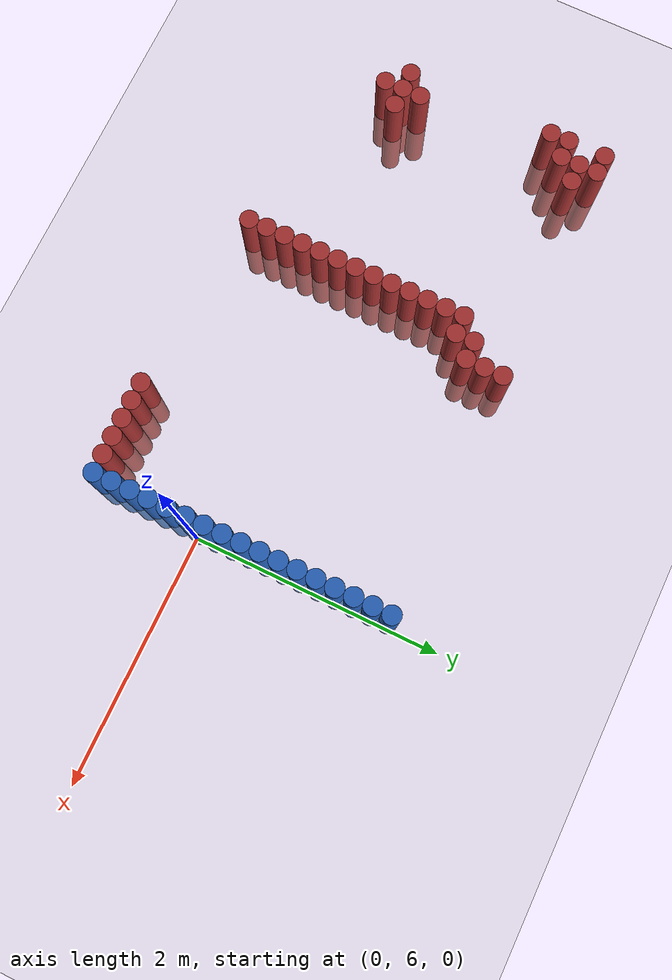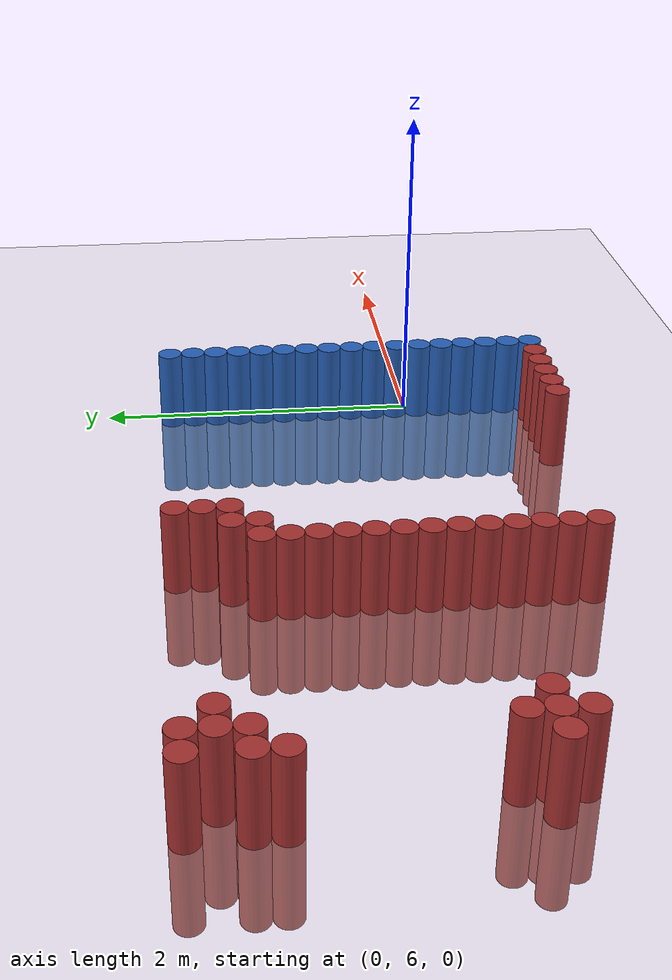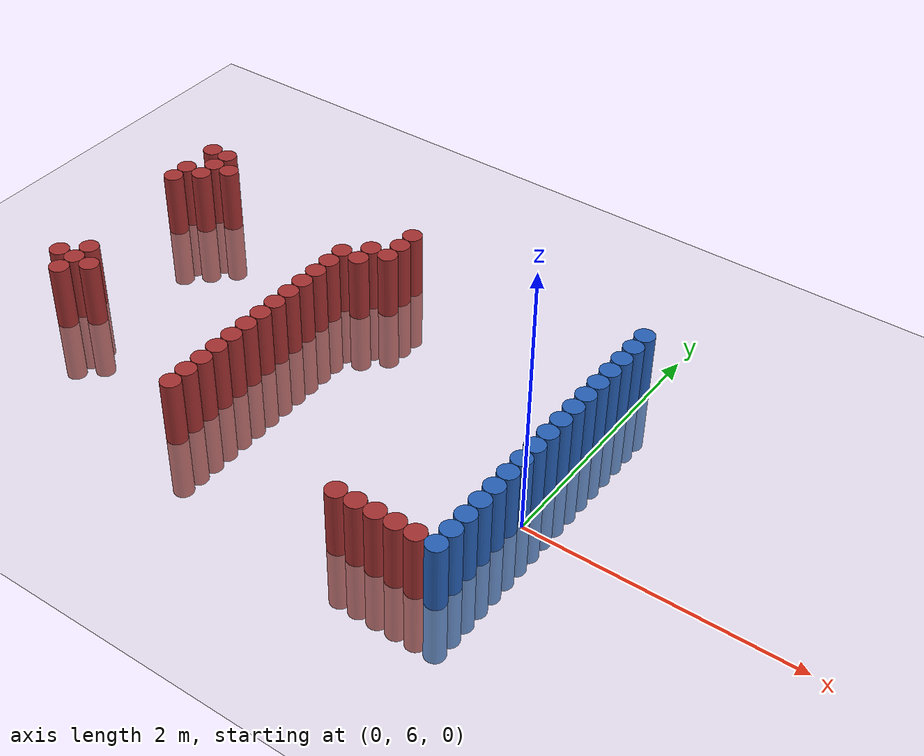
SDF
<sdf version="1.6">
 <world name="default">
  <model name="ground_plane">
   <static>1</static>
   <link name="link">
    <collision name="collision">
     <geometry><plane><normal>0 0 1</normal><size>100 100</size></plane></geometry>
     <surface><friction><ode><mu>100</mu><mu2>50</mu2></ode></friction></surface>
    </collision>
    <visual name="visual">
     <cast_shadows>0</cast_shadows>
     <geometry><plane><normal>0 0 1</normal><size>100 100</size></plane></geometry>
     <material>
      <script><uri>file://media/materials/scripts/gazebo.material</uri><name>Gazebo/Grey</name></script>
     </material>
    </visual>
   </link>
  </model>
  <model name="unit_cylinder_251">
   <static>1</static>
   <pose>-3.975000 5.925000 0.000000 0.000000 0.000000 0.000000</pose>
   <link name="link">
    <inertial>
     <mass>1</mass>
     <inertia><ixx>0.145833</ixx><ixy>0</ixy><ixz>0</ixz><iyy>0.145833</iyy><iyz>0</iyz><izz>0.125</izz></inertia>
    </inertial>
    <collision name="collision">
     <geometry><cylinder><radius>0.075000</radius><length>1</length></cylinder></geometry>
    </collision>
    <visual name="visual">
     <geometry><cylinder><radius>0.075000</radius><length>1</length></cylinder></geometry>
     <material>
      <ambient>0.648000 0.192000 0.192000 1</ambient>
      <diffuse>0.648000 0.192000 0.192000 1</diffuse>
     </material>
     <material>
      <script><name>Gazebo/Grey</name><uri>file://media/materials/scripts/gazebo.material</uri></script>
     </material>
    </visual>
   </link>
  </model>
  <model name="unit_cylinder_252">
   <static>1</static>
   <pose>-3.975000 7.125000 0.000000 0.000000 0.000000 0.000000</pose>
   <link name="link">
    <inertial>
     <mass>1</mass>
     <inertia><ixx>0.145833</ixx><ixy>0</ixy><ixz>0</ixz><iyy>0.145833</iyy><iyz>0</iyz><izz>0.125</izz></inertia>
    </inertial>
    <collision name="collision">
     <geometry><cylinder><radius>0.075000</radius><length>1</length></cylinder></geometry>
    </collision>
    <visual name="visual">
     <geometry><cylinder><radius>0.075000</radius><length>1</length></cylinder></geometry>
     <material>
      <ambient>0.648000 0.192000 0.192000 1</ambient>
      <diffuse>0.648000 0.192000 0.192000 1</diffuse>
     </material>
     <material>
      <script><name>Gazebo/Grey</name><uri>file://media/materials/scripts/gazebo.material</uri></script>
     </material>
    </visual>
   </link>
  </model>
  <model name="unit_cylinder_253">
   <static>1</static>
   <pose>-3.975000 7.275000 0.000000 0.000000 0.000000 0.000000</pose>
   <link name="link">
    <inertial>
     <mass>1</mass>
     <inertia><ixx>0.145833</ixx><ixy>0</ixy><ixz>0</ixz><iyy>0.145833</iyy><iyz>0</iyz><izz>0.125</izz></inertia>
    </inertial>
    <collision name="collision">
     <geometry><cylinder><radius>0.075000</radius><length>1</length></cylinder></geometry>
    </collision>
    <visual name="visual">
     <geometry><cylinder><radius>0.075000</radius><length>1</length></cylinder></geometry>
     <material>
      <ambient>0.648000 0.192000 0.192000 1</ambient>
      <diffuse>0.648000 0.192000 0.192000 1</diffuse>
     </material>
     <material>
      <script><name>Gazebo/Grey</name><uri>file://media/materials/scripts/gazebo.material</uri></script>
     </material>
    </visual>
   </link>
  </model>
  <model name="unit_cylinder_254">
   <static>1</static>
   <pose>-3.975000 7.575000 0.000000 0.000000 0.000000 0.000000</pose>
   <link name="link">
    <inertial>
     <mass>1</mass>
     <inertia><ixx>0.145833</ixx><ixy>0</ixy><ixz>0</ixz><iyy>0.145833</iyy><iyz>0</iyz><izz>0.125</izz></inertia>
    </inertial>
    <collision name="collision">
     <geometry><cylinder><radius>0.075000</radius><length>1</length></cylinder></geometry>
    </collision>
    <visual name="visual">
     <geometry><cylinder><radius>0.075000</radius><length>1</length></cylinder></geometry>
     <material>
      <ambient>0.648000 0.192000 0.192000 1</ambient>
      <diffuse>0.648000 0.192000 0.192000 1</diffuse>
     </material>
     <material>
      <script><name>Gazebo/Grey</name><uri>file://media/materials/scripts/gazebo.material</uri></script>
     </material>
    </visual>
   </link>
  </model>
  <model name="unit_cylinder_258">
   <static>1</static>
   <pose>-3.825000 5.775000 0.000000 0.000000 0.000000 0.000000</pose>
   <link name="link">
    <inertial>
     <mass>1</mass>
     <inertia><ixx>0.145833</ixx><ixy>0</ixy><ixz>0</ixz><iyy>0.145833</iyy><iyz>0</iyz><izz>0.125</izz></inertia>
    </inertial>
    <collision name="collision">
     <geometry><cylinder><radius>0.075000</radius><length>1</length></cylinder></geometry>
    </collision>
    <visual name="visual">
     <geometry><cylinder><radius>0.075000</radius><length>1</length></cylinder></geometry>
     <material>
      <ambient>0.648000 0.192000 0.192000 1</ambient>
      <diffuse>0.648000 0.192000 0.192000 1</diffuse>
     </material>
     <material>
      <script><name>Gazebo/Grey</name><uri>file://media/materials/scripts/gazebo.material</uri></script>
     </material>
    </visual>
   </link>
  </model>
  <model name="unit_cylinder_259">
   <static>1</static>
   <pose>-3.825000 5.925000 0.000000 0.000000 0.000000 0.000000</pose>
   <link name="link">
    <inertial>
     <mass>1</mass>
     <inertia><ixx>0.145833</ixx><ixy>0</ixy><ixz>0</ixz><iyy>0.145833</iyy><iyz>0</iyz><izz>0.125</izz></inertia>
    </inertial>
    <collision name="collision">
     <geometry><cylinder><radius>0.075000</radius><length>1</length></cylinder></geometry>
    </collision>
    <visual name="visual">
     <geometry><cylinder><radius>0.075000</radius><length>1</length></cylinder></geometry>
     <material>
      <ambient>0.648000 0.192000 0.192000 1</ambient>
      <diffuse>0.648000 0.192000 0.192000 1</diffuse>
     </material>
     <material>
      <script><name>Gazebo/Grey</name><uri>file://media/materials/scripts/gazebo.material</uri></script>
     </material>
    </visual>
   </link>
  </model>
  <model name="unit_cylinder_260">
   <static>1</static>
   <pose>-3.825000 6.075000 0.000000 0.000000 0.000000 0.000000</pose>
   <link name="link">
    <inertial>
     <mass>1</mass>
     <inertia><ixx>0.145833</ixx><ixy>0</ixy><ixz>0</ixz><iyy>0.145833</iyy><iyz>0</iyz><izz>0.125</izz></inertia>
    </inertial>
    <collision name="collision">
     <geometry><cylinder><radius>0.075000</radius><length>1</length></cylinder></geometry>
    </collision>
    <visual name="visual">
     <geometry><cylinder><radius>0.075000</radius><length>1</length></cylinder></geometry>
     <material>
      <ambient>0.648000 0.192000 0.192000 1</ambient>
      <diffuse>0.648000 0.192000 0.192000 1</diffuse>
     </material>
     <material>
      <script><name>Gazebo/Grey</name><uri>file://media/materials/scripts/gazebo.material</uri></script>
     </material>
    </visual>
   </link>
  </model>
  <model name="unit_cylinder_261">
   <static>1</static>
   <pose>-3.825000 7.275000 0.000000 0.000000 0.000000 0.000000</pose>
   <link name="link">
    <inertial>
     <mass>1</mass>
     <inertia><ixx>0.145833</ixx><ixy>0</ixy><ixz>0</ixz><iyy>0.145833</iyy><iyz>0</iyz><izz>0.125</izz></inertia>
    </inertial>
    <collision name="collision">
     <geometry><cylinder><radius>0.075000</radius><length>1</length></cylinder></geometry>
    </collision>
    <visual name="visual">
     <geometry><cylinder><radius>0.075000</radius><length>1</length></cylinder></geometry>
     <material>
      <ambient>0.648000 0.192000 0.192000 1</ambient>
      <diffuse>0.648000 0.192000 0.192000 1</diffuse>
     </material>
     <material>
      <script><name>Gazebo/Grey</name><uri>file://media/materials/scripts/gazebo.material</uri></script>
     </material>
    </visual>
   </link>
  </model>
  <model name="unit_cylinder_262">
   <static>1</static>
   <pose>-3.825000 7.425000 0.000000 0.000000 0.000000 0.000000</pose>
   <link name="link">
    <inertial>
     <mass>1</mass>
     <inertia><ixx>0.145833</ixx><ixy>0</ixy><ixz>0</ixz><iyy>0.145833</iyy><iyz>0</iyz><izz>0.125</izz></inertia>
    </inertial>
    <collision name="collision">
     <geometry><cylinder><radius>0.075000</radius><length>1</length></cylinder></geometry>
    </collision>
    <visual name="visual">
     <geometry><cylinder><radius>0.075000</radius><length>1</length></cylinder></geometry>
     <material>
      <ambient>0.648000 0.192000 0.192000 1</ambient>
      <diffuse>0.648000 0.192000 0.192000 1</diffuse>
     </material>
     <material>
      <script><name>Gazebo/Grey</name><uri>file://media/materials/scripts/gazebo.material</uri></script>
     </material>
    </visual>
   </link>
  </model>
  <model name="unit_cylinder_263">
   <static>1</static>
   <pose>-3.825000 7.575000 0.000000 0.000000 0.000000 0.000000</pose>
   <link name="link">
    <inertial>
     <mass>1</mass>
     <inertia><ixx>0.145833</ixx><ixy>0</ixy><ixz>0</ixz><iyy>0.145833</iyy><iyz>0</iyz><izz>0.125</izz></inertia>
    </inertial>
    <collision name="collision">
     <geometry><cylinder><radius>0.075000</radius><length>1</length></cylinder></geometry>
    </collision>
    <visual name="visual">
     <geometry><cylinder><radius>0.075000</radius><length>1</length></cylinder></geometry>
     <material>
      <ambient>0.648000 0.192000 0.192000 1</ambient>
      <diffuse>0.648000 0.192000 0.192000 1</diffuse>
     </material>
     <material>
      <script><name>Gazebo/Grey</name><uri>file://media/materials/scripts/gazebo.material</uri></script>
     </material>
    </visual>
   </link>
  </model>
  <model name="unit_cylinder_268">
   <static>1</static>
   <pose>-3.675000 5.925000 0.000000 0.000000 0.000000 0.000000</pose>
   <link name="link">
    <inertial>
     <mass>1</mass>
     <inertia><ixx>0.145833</ixx><ixy>0</ixy><ixz>0</ixz><iyy>0.145833</iyy><iyz>0</iyz><izz>0.125</izz></inertia>
    </inertial>
    <collision name="collision">
     <geometry><cylinder><radius>0.075000</radius><length>1</length></cylinder></geometry>
    </collision>
    <visual name="visual">
     <geometry><cylinder><radius>0.075000</radius><length>1</length></cylinder></geometry>
     <material>
      <ambient>0.648000 0.192000 0.192000 1</ambient>
      <diffuse>0.648000 0.192000 0.192000 1</diffuse>
     </material>
     <material>
      <script><name>Gazebo/Grey</name><uri>file://media/materials/scripts/gazebo.material</uri></script>
     </material>
    </visual>
   </link>
  </model>
  <model name="unit_cylinder_269">
   <static>1</static>
   <pose>-3.675000 7.425000 0.000000 0.000000 0.000000 0.000000</pose>
   <link name="link">
    <inertial>
     <mass>1</mass>
     <inertia><ixx>0.145833</ixx><ixy>0</ixy><ixz>0</ixz><iyy>0.145833</iyy><iyz>0</iyz><izz>0.125</izz></inertia>
    </inertial>
    <collision name="collision">
     <geometry><cylinder><radius>0.075000</radius><length>1</length></cylinder></geometry>
    </collision>
    <visual name="visual">
     <geometry><cylinder><radius>0.075000</radius><length>1</length></cylinder></geometry>
     <material>
      <ambient>0.648000 0.192000 0.192000 1</ambient>
      <diffuse>0.648000 0.192000 0.192000 1</diffuse>
     </material>
     <material>
      <script><name>Gazebo/Grey</name><uri>file://media/materials/scripts/gazebo.material</uri></script>
     </material>
    </visual>
   </link>
  </model>
  <model name="unit_cylinder_279">
   <static>1</static>
   <pose>-2.325000 5.325000 0.000000 0.000000 0.000000 0.000000</pose>
   <link name="link">
    <inertial>
     <mass>1</mass>
     <inertia><ixx>0.145833</ixx><ixy>0</ixy><ixz>0</ixz><iyy>0.145833</iyy><iyz>0</iyz><izz>0.125</izz></inertia>
    </inertial>
    <collision name="collision">
     <geometry><cylinder><radius>0.075000</radius><length>1</length></cylinder></geometry>
    </collision>
    <visual name="visual">
     <geometry><cylinder><radius>0.075000</radius><length>1</length></cylinder></geometry>
     <material>
      <ambient>0.648000 0.192000 0.192000 1</ambient>
      <diffuse>0.648000 0.192000 0.192000 1</diffuse>
     </material>
     <material>
      <script><name>Gazebo/Grey</name><uri>file://media/materials/scripts/gazebo.material</uri></script>
     </material>
    </visual>
   </link>
  </model>
  <model name="unit_cylinder_280">
   <static>1</static>
   <pose>-2.325000 5.475000 0.000000 0.000000 0.000000 0.000000</pose>
   <link name="link">
    <inertial>
     <mass>1</mass>
     <inertia><ixx>0.145833</ixx><ixy>0</ixy><ixz>0</ixz><iyy>0.145833</iyy><iyz>0</iyz><izz>0.125</izz></inertia>
    </inertial>
    <collision name="collision">
     <geometry><cylinder><radius>0.075000</radius><length>1</length></cylinder></geometry>
    </collision>
    <visual name="visual">
     <geometry><cylinder><radius>0.075000</radius><length>1</length></cylinder></geometry>
     <material>
      <ambient>0.648000 0.192000 0.192000 1</ambient>
      <diffuse>0.648000 0.192000 0.192000 1</diffuse>
     </material>
     <material>
      <script><name>Gazebo/Grey</name><uri>file://media/materials/scripts/gazebo.material</uri></script>
     </material>
    </visual>
   </link>
  </model>
  <model name="unit_cylinder_281">
   <static>1</static>
   <pose>-2.325000 5.625000 0.000000 0.000000 0.000000 0.000000</pose>
   <link name="link">
    <inertial>
     <mass>1</mass>
     <inertia><ixx>0.145833</ixx><ixy>0</ixy><ixz>0</ixz><iyy>0.145833</iyy><iyz>0</iyz><izz>0.125</izz></inertia>
    </inertial>
    <collision name="collision">
     <geometry><cylinder><radius>0.075000</radius><length>1</length></cylinder></geometry>
    </collision>
    <visual name="visual">
     <geometry><cylinder><radius>0.075000</radius><length>1</length></cylinder></geometry>
     <material>
      <ambient>0.648000 0.192000 0.192000 1</ambient>
      <diffuse>0.648000 0.192000 0.192000 1</diffuse>
     </material>
     <material>
      <script><name>Gazebo/Grey</name><uri>file://media/materials/scripts/gazebo.material</uri></script>
     </material>
    </visual>
   </link>
  </model>
  <model name="unit_cylinder_282">
   <static>1</static>
   <pose>-2.325000 5.775000 0.000000 0.000000 0.000000 0.000000</pose>
   <link name="link">
    <inertial>
     <mass>1</mass>
     <inertia><ixx>0.145833</ixx><ixy>0</ixy><ixz>0</ixz><iyy>0.145833</iyy><iyz>0</iyz><izz>0.125</izz></inertia>
    </inertial>
    <collision name="collision">
     <geometry><cylinder><radius>0.075000</radius><length>1</length></cylinder></geometry>
    </collision>
    <visual name="visual">
     <geometry><cylinder><radius>0.075000</radius><length>1</length></cylinder></geometry>
     <material>
      <ambient>0.648000 0.192000 0.192000 1</ambient>
      <diffuse>0.648000 0.192000 0.192000 1</diffuse>
     </material>
     <material>
      <script><name>Gazebo/Grey</name><uri>file://media/materials/scripts/gazebo.material</uri></script>
     </material>
    </visual>
   </link>
  </model>
  <model name="unit_cylinder_283">
   <static>1</static>
   <pose>-2.325000 5.925000 0.000000 0.000000 0.000000 0.000000</pose>
   <link name="link">
    <inertial>
     <mass>1</mass>
     <inertia><ixx>0.145833</ixx><ixy>0</ixy><ixz>0</ixz><iyy>0.145833</iyy><iyz>0</iyz><izz>0.125</izz></inertia>
    </inertial>
    <collision name="collision">
     <geometry><cylinder><radius>0.075000</radius><length>1</length></cylinder></geometry>
    </collision>
    <visual name="visual">
     <geometry><cylinder><radius>0.075000</radius><length>1</length></cylinder></geometry>
     <material>
      <ambient>0.648000 0.192000 0.192000 1</ambient>
      <diffuse>0.648000 0.192000 0.192000 1</diffuse>
     </material>
     <material>
      <script><name>Gazebo/Grey</name><uri>file://media/materials/scripts/gazebo.material</uri></script>
     </material>
    </visual>
   </link>
  </model>
  <model name="unit_cylinder_284">
   <static>1</static>
   <pose>-2.325000 6.075000 0.000000 0.000000 0.000000 0.000000</pose>
   <link name="link">
    <inertial>
     <mass>1</mass>
     <inertia><ixx>0.145833</ixx><ixy>0</ixy><ixz>0</ixz><iyy>0.145833</iyy><iyz>0</iyz><izz>0.125</izz></inertia>
    </inertial>
    <collision name="collision">
     <geometry><cylinder><radius>0.075000</radius><length>1</length></cylinder></geometry>
    </collision>
    <visual name="visual">
     <geometry><cylinder><radius>0.075000</radius><length>1</length></cylinder></geometry>
     <material>
      <ambient>0.648000 0.192000 0.192000 1</ambient>
      <diffuse>0.648000 0.192000 0.192000 1</diffuse>
     </material>
     <material>
      <script><name>Gazebo/Grey</name><uri>file://media/materials/scripts/gazebo.material</uri></script>
     </material>
    </visual>
   </link>
  </model>
  <model name="unit_cylinder_285">
   <static>1</static>
   <pose>-2.325000 6.225000 0.000000 0.000000 0.000000 0.000000</pose>
   <link name="link">
    <inertial>
     <mass>1</mass>
     <inertia><ixx>0.145833</ixx><ixy>0</ixy><ixz>0</ixz><iyy>0.145833</iyy><iyz>0</iyz><izz>0.125</izz></inertia>
    </inertial>
    <collision name="collision">
     <geometry><cylinder><radius>0.075000</radius><length>1</length></cylinder></geometry>
    </collision>
    <visual name="visual">
     <geometry><cylinder><radius>0.075000</radius><length>1</length></cylinder></geometry>
     <material>
      <ambient>0.648000 0.192000 0.192000 1</ambient>
      <diffuse>0.648000 0.192000 0.192000 1</diffuse>
     </material>
     <material>
      <script><name>Gazebo/Grey</name><uri>file://media/materials/scripts/gazebo.material</uri></script>
     </material>
    </visual>
   </link>
  </model>
  <model name="unit_cylinder_286">
   <static>1</static>
   <pose>-2.325000 6.375000 0.000000 0.000000 0.000000 0.000000</pose>
   <link name="link">
    <inertial>
     <mass>1</mass>
     <inertia><ixx>0.145833</ixx><ixy>0</ixy><ixz>0</ixz><iyy>0.145833</iyy><iyz>0</iyz><izz>0.125</izz></inertia>
    </inertial>
    <collision name="collision">
     <geometry><cylinder><radius>0.075000</radius><length>1</length></cylinder></geometry>
    </collision>
    <visual name="visual">
     <geometry><cylinder><radius>0.075000</radius><length>1</length></cylinder></geometry>
     <material>
      <ambient>0.648000 0.192000 0.192000 1</ambient>
      <diffuse>0.648000 0.192000 0.192000 1</diffuse>
     </material>
     <material>
      <script><name>Gazebo/Grey</name><uri>file://media/materials/scripts/gazebo.material</uri></script>
     </material>
    </visual>
   </link>
  </model>
  <model name="unit_cylinder_287">
   <static>1</static>
   <pose>-2.325000 6.525000 0.000000 0.000000 0.000000 0.000000</pose>
   <link name="link">
    <inertial>
     <mass>1</mass>
     <inertia><ixx>0.145833</ixx><ixy>0</ixy><ixz>0</ixz><iyy>0.145833</iyy><iyz>0</iyz><izz>0.125</izz></inertia>
    </inertial>
    <collision name="collision">
     <geometry><cylinder><radius>0.075000</radius><length>1</length></cylinder></geometry>
    </collision>
    <visual name="visual">
     <geometry><cylinder><radius>0.075000</radius><length>1</length></cylinder></geometry>
     <material>
      <ambient>0.648000 0.192000 0.192000 1</ambient>
      <diffuse>0.648000 0.192000 0.192000 1</diffuse>
     </material>
     <material>
      <script><name>Gazebo/Grey</name><uri>file://media/materials/scripts/gazebo.material</uri></script>
     </material>
    </visual>
   </link>
  </model>
  <model name="unit_cylinder_288">
   <static>1</static>
   <pose>-2.325000 6.675000 0.000000 0.000000 0.000000 0.000000</pose>
   <link name="link">
    <inertial>
     <mass>1</mass>
     <inertia><ixx>0.145833</ixx><ixy>0</ixy><ixz>0</ixz><iyy>0.145833</iyy><iyz>0</iyz><izz>0.125</izz></inertia>
    </inertial>
    <collision name="collision">
     <geometry><cylinder><radius>0.075000</radius><length>1</length></cylinder></geometry>
    </collision>
    <visual name="visual">
     <geometry><cylinder><radius>0.075000</radius><length>1</length></cylinder></geometry>
     <material>
      <ambient>0.648000 0.192000 0.192000 1</ambient>
      <diffuse>0.648000 0.192000 0.192000 1</diffuse>
     </material>
     <material>
      <script><name>Gazebo/Grey</name><uri>file://media/materials/scripts/gazebo.material</uri></script>
     </material>
    </visual>
   </link>
  </model>
  <model name="unit_cylinder_289">
   <static>1</static>
   <pose>-2.325000 6.825000 0.000000 0.000000 0.000000 0.000000</pose>
   <link name="link">
    <inertial>
     <mass>1</mass>
     <inertia><ixx>0.145833</ixx><ixy>0</ixy><ixz>0</ixz><iyy>0.145833</iyy><iyz>0</iyz><izz>0.125</izz></inertia>
    </inertial>
    <collision name="collision">
     <geometry><cylinder><radius>0.075000</radius><length>1</length></cylinder></geometry>
    </collision>
    <visual name="visual">
     <geometry><cylinder><radius>0.075000</radius><length>1</length></cylinder></geometry>
     <material>
      <ambient>0.648000 0.192000 0.192000 1</ambient>
      <diffuse>0.648000 0.192000 0.192000 1</diffuse>
     </material>
     <material>
      <script><name>Gazebo/Grey</name><uri>file://media/materials/scripts/gazebo.material</uri></script>
     </material>
    </visual>
   </link>
  </model>
  <model name="unit_cylinder_290">
   <static>1</static>
   <pose>-2.325000 6.975000 0.000000 0.000000 0.000000 0.000000</pose>
   <link name="link">
    <inertial>
     <mass>1</mass>
     <inertia><ixx>0.145833</ixx><ixy>0</ixy><ixz>0</ixz><iyy>0.145833</iyy><iyz>0</iyz><izz>0.125</izz></inertia>
    </inertial>
    <collision name="collision">
     <geometry><cylinder><radius>0.075000</radius><length>1</length></cylinder></geometry>
    </collision>
    <visual name="visual">
     <geometry><cylinder><radius>0.075000</radius><length>1</length></cylinder></geometry>
     <material>
      <ambient>0.648000 0.192000 0.192000 1</ambient>
      <diffuse>0.648000 0.192000 0.192000 1</diffuse>
     </material>
     <material>
      <script><name>Gazebo/Grey</name><uri>file://media/materials/scripts/gazebo.material</uri></script>
     </material>
    </visual>
   </link>
  </model>
  <model name="unit_cylinder_291">
   <static>1</static>
   <pose>-2.325000 7.125000 0.000000 0.000000 0.000000 0.000000</pose>
   <link name="link">
    <inertial>
     <mass>1</mass>
     <inertia><ixx>0.145833</ixx><ixy>0</ixy><ixz>0</ixz><iyy>0.145833</iyy><iyz>0</iyz><izz>0.125</izz></inertia>
    </inertial>
    <collision name="collision">
     <geometry><cylinder><radius>0.075000</radius><length>1</length></cylinder></geometry>
    </collision>
    <visual name="visual">
     <geometry><cylinder><radius>0.075000</radius><length>1</length></cylinder></geometry>
     <material>
      <ambient>0.648000 0.192000 0.192000 1</ambient>
      <diffuse>0.648000 0.192000 0.192000 1</diffuse>
     </material>
     <material>
      <script><name>Gazebo/Grey</name><uri>file://media/materials/scripts/gazebo.material</uri></script>
     </material>
    </visual>
   </link>
  </model>
  <model name="unit_cylinder_293">
   <static>1</static>
   <pose>-2.175000 7.125000 0.000000 0.000000 0.000000 0.000000</pose>
   <link name="link">
    <inertial>
     <mass>1</mass>
     <inertia><ixx>0.145833</ixx><ixy>0</ixy><ixz>0</ixz><iyy>0.145833</iyy><iyz>0</iyz><izz>0.125</izz></inertia>
    </inertial>
    <collision name="collision">
     <geometry><cylinder><radius>0.075000</radius><length>1</length></cylinder></geometry>
    </collision>
    <visual name="visual">
     <geometry><cylinder><radius>0.075000</radius><length>1</length></cylinder></geometry>
     <material>
      <ambient>0.648000 0.192000 0.192000 1</ambient>
      <diffuse>0.648000 0.192000 0.192000 1</diffuse>
     </material>
     <material>
      <script><name>Gazebo/Grey</name><uri>file://media/materials/scripts/gazebo.material</uri></script>
     </material>
    </visual>
   </link>
  </model>
  <model name="unit_cylinder_294">
   <static>1</static>
   <pose>-2.175000 7.275000 0.000000 0.000000 0.000000 0.000000</pose>
   <link name="link">
    <inertial>
     <mass>1</mass>
     <inertia><ixx>0.145833</ixx><ixy>0</ixy><ixz>0</ixz><iyy>0.145833</iyy><iyz>0</iyz><izz>0.125</izz></inertia>
    </inertial>
    <collision name="collision">
     <geometry><cylinder><radius>0.075000</radius><length>1</length></cylinder></geometry>
    </collision>
    <visual name="visual">
     <geometry><cylinder><radius>0.075000</radius><length>1</length></cylinder></geometry>
     <material>
      <ambient>0.648000 0.192000 0.192000 1</ambient>
      <diffuse>0.648000 0.192000 0.192000 1</diffuse>
     </material>
     <material>
      <script><name>Gazebo/Grey</name><uri>file://media/materials/scripts/gazebo.material</uri></script>
     </material>
    </visual>
   </link>
  </model>
  <model name="unit_cylinder_296">
   <static>1</static>
   <pose>-2.025000 7.275000 0.000000 0.000000 0.000000 0.000000</pose>
   <link name="link">
    <inertial>
     <mass>1</mass>
     <inertia><ixx>0.145833</ixx><ixy>0</ixy><ixz>0</ixz><iyy>0.145833</iyy><iyz>0</iyz><izz>0.125</izz></inertia>
    </inertial>
    <collision name="collision">
     <geometry><cylinder><radius>0.075000</radius><length>1</length></cylinder></geometry>
    </collision>
    <visual name="visual">
     <geometry><cylinder><radius>0.075000</radius><length>1</length></cylinder></geometry>
     <material>
      <ambient>0.648000 0.192000 0.192000 1</ambient>
      <diffuse>0.648000 0.192000 0.192000 1</diffuse>
     </material>
     <material>
      <script><name>Gazebo/Grey</name><uri>file://media/materials/scripts/gazebo.material</uri></script>
     </material>
    </visual>
   </link>
  </model>
  <model name="unit_cylinder_297">
   <static>1</static>
   <pose>-2.025000 7.425000 0.000000 0.000000 0.000000 0.000000</pose>
   <link name="link">
    <inertial>
     <mass>1</mass>
     <inertia><ixx>0.145833</ixx><ixy>0</ixy><ixz>0</ixz><iyy>0.145833</iyy><iyz>0</iyz><izz>0.125</izz></inertia>
    </inertial>
    <collision name="collision">
     <geometry><cylinder><radius>0.075000</radius><length>1</length></cylinder></geometry>
    </collision>
    <visual name="visual">
     <geometry><cylinder><radius>0.075000</radius><length>1</length></cylinder></geometry>
     <material>
      <ambient>0.648000 0.192000 0.192000 1</ambient>
      <diffuse>0.648000 0.192000 0.192000 1</diffuse>
     </material>
     <material>
      <script><name>Gazebo/Grey</name><uri>file://media/materials/scripts/gazebo.material</uri></script>
     </material>
    </visual>
   </link>
  </model>
  <model name="unit_cylinder_298">
   <static>1</static>
   <pose>-2.025000 7.575000 0.000000 0.000000 0.000000 0.000000</pose>
   <link name="link">
    <inertial>
     <mass>1</mass>
     <inertia><ixx>0.145833</ixx><ixy>0</ixy><ixz>0</ixz><iyy>0.145833</iyy><iyz>0</iyz><izz>0.125</izz></inertia>
    </inertial>
    <collision name="collision">
     <geometry><cylinder><radius>0.075000</radius><length>1</length></cylinder></geometry>
    </collision>
    <visual name="visual">
     <geometry><cylinder><radius>0.075000</radius><length>1</length></cylinder></geometry>
     <material>
      <ambient>0.648000 0.192000 0.192000 1</ambient>
      <diffuse>0.648000 0.192000 0.192000 1</diffuse>
     </material>
     <material>
      <script><name>Gazebo/Grey</name><uri>file://media/materials/scripts/gazebo.material</uri></script>
     </material>
    </visual>
   </link>
  </model>
  <model name="unit_cylinder_326">
   <static>1</static>
   <pose>-0.825000 5.175000 0.000000 0.000000 0.000000 0.000000</pose>
   <link name="link">
    <inertial>
     <mass>1</mass>
     <inertia><ixx>0.145833</ixx><ixy>0</ixy><ixz>0</ixz><iyy>0.145833</iyy><iyz>0</iyz><izz>0.125</izz></inertia>
    </inertial>
    <collision name="collision">
     <geometry><cylinder><radius>0.075000</radius><length>1</length></cylinder></geometry>
    </collision>
    <visual name="visual">
     <geometry><cylinder><radius>0.075000</radius><length>1</length></cylinder></geometry>
     <material>
      <ambient>0.648000 0.192000 0.192000 1</ambient>
      <diffuse>0.648000 0.192000 0.192000 1</diffuse>
     </material>
     <material>
      <script><name>Gazebo/Grey</name><uri>file://media/materials/scripts/gazebo.material</uri></script>
     </material>
    </visual>
   </link>
  </model>
  <model name="unit_cylinder_328">
   <static>1</static>
   <pose>-0.675000 5.175000 0.000000 0.000000 0.000000 0.000000</pose>
   <link name="link">
    <inertial>
     <mass>1</mass>
     <inertia><ixx>0.145833</ixx><ixy>0</ixy><ixz>0</ixz><iyy>0.145833</iyy><iyz>0</iyz><izz>0.125</izz></inertia>
    </inertial>
    <collision name="collision">
     <geometry><cylinder><radius>0.075000</radius><length>1</length></cylinder></geometry>
    </collision>
    <visual name="visual">
     <geometry><cylinder><radius>0.075000</radius><length>1</length></cylinder></geometry>
     <material>
      <ambient>0.648000 0.192000 0.192000 1</ambient>
      <diffuse>0.648000 0.192000 0.192000 1</diffuse>
     </material>
     <material>
      <script><name>Gazebo/Grey</name><uri>file://media/materials/scripts/gazebo.material</uri></script>
     </material>
    </visual>
   </link>
  </model>
  <model name="unit_cylinder_330">
   <static>1</static>
   <pose>-0.525000 5.175000 0.000000 0.000000 0.000000 0.000000</pose>
   <link name="link">
    <inertial>
     <mass>1</mass>
     <inertia><ixx>0.145833</ixx><ixy>0</ixy><ixz>0</ixz><iyy>0.145833</iyy><iyz>0</iyz><izz>0.125</izz></inertia>
    </inertial>
    <collision name="collision">
     <geometry><cylinder><radius>0.075000</radius><length>1</length></cylinder></geometry>
    </collision>
    <visual name="visual">
     <geometry><cylinder><radius>0.075000</radius><length>1</length></cylinder></geometry>
     <material>
      <ambient>0.648000 0.192000 0.192000 1</ambient>
      <diffuse>0.648000 0.192000 0.192000 1</diffuse>
     </material>
     <material>
      <script><name>Gazebo/Grey</name><uri>file://media/materials/scripts/gazebo.material</uri></script>
     </material>
    </visual>
   </link>
  </model>
  <model name="unit_cylinder_332">
   <static>1</static>
   <pose>-0.375000 5.175000 0.000000 0.000000 0.000000 0.000000</pose>
   <link name="link">
    <inertial>
     <mass>1</mass>
     <inertia><ixx>0.145833</ixx><ixy>0</ixy><ixz>0</ixz><iyy>0.145833</iyy><iyz>0</iyz><izz>0.125</izz></inertia>
    </inertial>
    <collision name="collision">
     <geometry><cylinder><radius>0.075000</radius><length>1</length></cylinder></geometry>
    </collision>
    <visual name="visual">
     <geometry><cylinder><radius>0.075000</radius><length>1</length></cylinder></geometry>
     <material>
      <ambient>0.648000 0.192000 0.192000 1</ambient>
      <diffuse>0.648000 0.192000 0.192000 1</diffuse>
     </material>
     <material>
      <script><name>Gazebo/Grey</name><uri>file://media/materials/scripts/gazebo.material</uri></script>
     </material>
    </visual>
   </link>
  </model>
  <model name="unit_cylinder_334">
   <static>1</static>
   <pose>-0.225000 5.175000 0.000000 0.000000 0.000000 0.000000</pose>
   <link name="link">
    <inertial>
     <mass>1</mass>
     <inertia><ixx>0.145833</ixx><ixy>0</ixy><ixz>0</ixz><iyy>0.145833</iyy><iyz>0</iyz><izz>0.125</izz></inertia>
    </inertial>
    <collision name="collision">
     <geometry><cylinder><radius>0.075000</radius><length>1</length></cylinder></geometry>
    </collision>
    <visual name="visual">
     <geometry><cylinder><radius>0.075000</radius><length>1</length></cylinder></geometry>
     <material>
      <ambient>0.648000 0.192000 0.192000 1</ambient>
      <diffuse>0.648000 0.192000 0.192000 1</diffuse>
     </material>
     <material>
      <script><name>Gazebo/Grey</name><uri>file://media/materials/scripts/gazebo.material</uri></script>
     </material>
    </visual>
   </link>
  </model>
  <model name="unit_cylinder_336">
   <static>1</static>
   <pose>-0.075000 5.175000 0.000000 0.000000 0.000000 0.000000</pose>
   <link name="link">
    <inertial>
     <mass>1</mass>
     <inertia><ixx>0.145833</ixx><ixy>0</ixy><ixz>0</ixz><iyy>0.145833</iyy><iyz>0</iyz><izz>0.125</izz></inertia>
    </inertial>
    <collision name="collision">
     <geometry><cylinder><radius>0.075000</radius><length>1</length></cylinder></geometry>
    </collision>
    <visual name="visual">
     <geometry><cylinder><radius>0.075000</radius><length>1</length></cylinder></geometry>
     <material>
      <ambient>0.152000 0.379000 0.720000 1</ambient>
      <diffuse>0.152000 0.379000 0.720000 1</diffuse>
     </material>
     <material>
      <script><name>Gazebo/Grey</name><uri>file://media/materials/scripts/gazebo.material</uri></script>
     </material>
    </visual>
   </link>
  </model>
  <model name="unit_cylinder_337">
   <static>1</static>
   <pose>-0.075000 5.325000 0.000000 0.000000 0.000000 0.000000</pose>
   <link name="link">
    <inertial>
     <mass>1</mass>
     <inertia><ixx>0.145833</ixx><ixy>0</ixy><ixz>0</ixz><iyy>0.145833</iyy><iyz>0</iyz><izz>0.125</izz></inertia>
    </inertial>
    <collision name="collision">
     <geometry><cylinder><radius>0.075000</radius><length>1</length></cylinder></geometry>
    </collision>
    <visual name="visual">
     <geometry><cylinder><radius>0.075000</radius><length>1</length></cylinder></geometry>
     <material>
      <ambient>0.152000 0.379000 0.720000 1</ambient>
      <diffuse>0.152000 0.379000 0.720000 1</diffuse>
     </material>
     <material>
      <script><name>Gazebo/Grey</name><uri>file://media/materials/scripts/gazebo.material</uri></script>
     </material>
    </visual>
   </link>
  </model>
  <model name="unit_cylinder_338">
   <static>1</static>
   <pose>-0.075000 5.475000 0.000000 0.000000 0.000000 0.000000</pose>
   <link name="link">
    <inertial>
     <mass>1</mass>
     <inertia><ixx>0.145833</ixx><ixy>0</ixy><ixz>0</ixz><iyy>0.145833</iyy><iyz>0</iyz><izz>0.125</izz></inertia>
    </inertial>
    <collision name="collision">
     <geometry><cylinder><radius>0.075000</radius><length>1</length></cylinder></geometry>
    </collision>
    <visual name="visual">
     <geometry><cylinder><radius>0.075000</radius><length>1</length></cylinder></geometry>
     <material>
      <ambient>0.152000 0.379000 0.720000 1</ambient>
      <diffuse>0.152000 0.379000 0.720000 1</diffuse>
     </material>
     <material>
      <script><name>Gazebo/Grey</name><uri>file://media/materials/scripts/gazebo.material</uri></script>
     </material>
    </visual>
   </link>
  </model>
  <model name="unit_cylinder_339">
   <static>1</static>
   <pose>-0.075000 5.625000 0.000000 0.000000 0.000000 0.000000</pose>
   <link name="link">
    <inertial>
     <mass>1</mass>
     <inertia><ixx>0.145833</ixx><ixy>0</ixy><ixz>0</ixz><iyy>0.145833</iyy><iyz>0</iyz><izz>0.125</izz></inertia>
    </inertial>
    <collision name="collision">
     <geometry><cylinder><radius>0.075000</radius><length>1</length></cylinder></geometry>
    </collision>
    <visual name="visual">
     <geometry><cylinder><radius>0.075000</radius><length>1</length></cylinder></geometry>
     <material>
      <ambient>0.152000 0.379000 0.720000 1</ambient>
      <diffuse>0.152000 0.379000 0.720000 1</diffuse>
     </material>
     <material>
      <script><name>Gazebo/Grey</name><uri>file://media/materials/scripts/gazebo.material</uri></script>
     </material>
    </visual>
   </link>
  </model>
  <model name="unit_cylinder_340">
   <static>1</static>
   <pose>-0.075000 5.775000 0.000000 0.000000 0.000000 0.000000</pose>
   <link name="link">
    <inertial>
     <mass>1</mass>
     <inertia><ixx>0.145833</ixx><ixy>0</ixy><ixz>0</ixz><iyy>0.145833</iyy><iyz>0</iyz><izz>0.125</izz></inertia>
    </inertial>
    <collision name="collision">
     <geometry><cylinder><radius>0.075000</radius><length>1</length></cylinder></geometry>
    </collision>
    <visual name="visual">
     <geometry><cylinder><radius>0.075000</radius><length>1</length></cylinder></geometry>
     <material>
      <ambient>0.152000 0.379000 0.720000 1</ambient>
      <diffuse>0.152000 0.379000 0.720000 1</diffuse>
     </material>
     <material>
      <script><name>Gazebo/Grey</name><uri>file://media/materials/scripts/gazebo.material</uri></script>
     </material>
    </visual>
   </link>
  </model>
  <model name="unit_cylinder_341">
   <static>1</static>
   <pose>-0.075000 5.925000 0.000000 0.000000 0.000000 0.000000</pose>
   <link name="link">
    <inertial>
     <mass>1</mass>
     <inertia><ixx>0.145833</ixx><ixy>0</ixy><ixz>0</ixz><iyy>0.145833</iyy><iyz>0</iyz><izz>0.125</izz></inertia>
    </inertial>
    <collision name="collision">
     <geometry><cylinder><radius>0.075000</radius><length>1</length></cylinder></geometry>
    </collision>
    <visual name="visual">
     <geometry><cylinder><radius>0.075000</radius><length>1</length></cylinder></geometry>
     <material>
      <ambient>0.152000 0.379000 0.720000 1</ambient>
      <diffuse>0.152000 0.379000 0.720000 1</diffuse>
     </material>
     <material>
      <script><name>Gazebo/Grey</name><uri>file://media/materials/scripts/gazebo.material</uri></script>
     </material>
    </visual>
   </link>
  </model>
  <model name="unit_cylinder_342">
   <static>1</static>
   <pose>-0.075000 6.075000 0.000000 0.000000 0.000000 0.000000</pose>
   <link name="link">
    <inertial>
     <mass>1</mass>
     <inertia><ixx>0.145833</ixx><ixy>0</ixy><ixz>0</ixz><iyy>0.145833</iyy><iyz>0</iyz><izz>0.125</izz></inertia>
    </inertial>
    <collision name="collision">
     <geometry><cylinder><radius>0.075000</radius><length>1</length></cylinder></geometry>
    </collision>
    <visual name="visual">
     <geometry><cylinder><radius>0.075000</radius><length>1</length></cylinder></geometry>
     <material>
      <ambient>0.152000 0.379000 0.720000 1</ambient>
      <diffuse>0.152000 0.379000 0.720000 1</diffuse>
     </material>
     <material>
      <script><name>Gazebo/Grey</name><uri>file://media/materials/scripts/gazebo.material</uri></script>
     </material>
    </visual>
   </link>
  </model>
  <model name="unit_cylinder_343">
   <static>1</static>
   <pose>-0.075000 6.225000 0.000000 0.000000 0.000000 0.000000</pose>
   <link name="link">
    <inertial>
     <mass>1</mass>
     <inertia><ixx>0.145833</ixx><ixy>0</ixy><ixz>0</ixz><iyy>0.145833</iyy><iyz>0</iyz><izz>0.125</izz></inertia>
    </inertial>
    <collision name="collision">
     <geometry><cylinder><radius>0.075000</radius><length>1</length></cylinder></geometry>
    </collision>
    <visual name="visual">
     <geometry><cylinder><radius>0.075000</radius><length>1</length></cylinder></geometry>
     <material>
      <ambient>0.152000 0.379000 0.720000 1</ambient>
      <diffuse>0.152000 0.379000 0.720000 1</diffuse>
     </material>
     <material>
      <script><name>Gazebo/Grey</name><uri>file://media/materials/scripts/gazebo.material</uri></script>
     </material>
    </visual>
   </link>
  </model>
  <model name="unit_cylinder_344">
   <static>1</static>
   <pose>-0.075000 6.375000 0.000000 0.000000 0.000000 0.000000</pose>
   <link name="link">
    <inertial>
     <mass>1</mass>
     <inertia><ixx>0.145833</ixx><ixy>0</ixy><ixz>0</ixz><iyy>0.145833</iyy><iyz>0</iyz><izz>0.125</izz></inertia>
    </inertial>
    <collision name="collision">
     <geometry><cylinder><radius>0.075000</radius><length>1</length></cylinder></geometry>
    </collision>
    <visual name="visual">
     <geometry><cylinder><radius>0.075000</radius><length>1</length></cylinder></geometry>
     <material>
      <ambient>0.152000 0.379000 0.720000 1</ambient>
      <diffuse>0.152000 0.379000 0.720000 1</diffuse>
     </material>
     <material>
      <script><name>Gazebo/Grey</name><uri>file://media/materials/scripts/gazebo.material</uri></script>
     </material>
    </visual>
   </link>
  </model>
  <model name="unit_cylinder_345">
   <static>1</static>
   <pose>-0.075000 6.525000 0.000000 0.000000 0.000000 0.000000</pose>
   <link name="link">
    <inertial>
     <mass>1</mass>
     <inertia><ixx>0.145833</ixx><ixy>0</ixy><ixz>0</ixz><iyy>0.145833</iyy><iyz>0</iyz><izz>0.125</izz></inertia>
    </inertial>
    <collision name="collision">
     <geometry><cylinder><radius>0.075000</radius><length>1</length></cylinder></geometry>
    </collision>
    <visual name="visual">
     <geometry><cylinder><radius>0.075000</radius><length>1</length></cylinder></geometry>
     <material>
      <ambient>0.152000 0.379000 0.720000 1</ambient>
      <diffuse>0.152000 0.379000 0.720000 1</diffuse>
     </material>
     <material>
      <script><name>Gazebo/Grey</name><uri>file://media/materials/scripts/gazebo.material</uri></script>
     </material>
    </visual>
   </link>
  </model>
  <model name="unit_cylinder_346">
   <static>1</static>
   <pose>-0.075000 6.675000 0.000000 0.000000 0.000000 0.000000</pose>
   <link name="link">
    <inertial>
     <mass>1</mass>
     <inertia><ixx>0.145833</ixx><ixy>0</ixy><ixz>0</ixz><iyy>0.145833</iyy><iyz>0</iyz><izz>0.125</izz></inertia>
    </inertial>
    <collision name="collision">
     <geometry><cylinder><radius>0.075000</radius><length>1</length></cylinder></geometry>
    </collision>
    <visual name="visual">
     <geometry><cylinder><radius>0.075000</radius><length>1</length></cylinder></geometry>
     <material>
      <ambient>0.152000 0.379000 0.720000 1</ambient>
      <diffuse>0.152000 0.379000 0.720000 1</diffuse>
     </material>
     <material>
      <script><name>Gazebo/Grey</name><uri>file://media/materials/scripts/gazebo.material</uri></script>
     </material>
    </visual>
   </link>
  </model>
  <model name="unit_cylinder_347">
   <static>1</static>
   <pose>-0.075000 6.825000 0.000000 0.000000 0.000000 0.000000</pose>
   <link name="link">
    <inertial>
     <mass>1</mass>
     <inertia><ixx>0.145833</ixx><ixy>0</ixy><ixz>0</ixz><iyy>0.145833</iyy><iyz>0</iyz><izz>0.125</izz></inertia>
    </inertial>
    <collision name="collision">
     <geometry><cylinder><radius>0.075000</radius><length>1</length></cylinder></geometry>
    </collision>
    <visual name="visual">
     <geometry><cylinder><radius>0.075000</radius><length>1</length></cylinder></geometry>
     <material>
      <ambient>0.152000 0.379000 0.720000 1</ambient>
      <diffuse>0.152000 0.379000 0.720000 1</diffuse>
     </material>
     <material>
      <script><name>Gazebo/Grey</name><uri>file://media/materials/scripts/gazebo.material</uri></script>
     </material>
    </visual>
   </link>
  </model>
  <model name="unit_cylinder_348">
   <static>1</static>
   <pose>-0.075000 6.975000 0.000000 0.000000 0.000000 0.000000</pose>
   <link name="link">
    <inertial>
     <mass>1</mass>
     <inertia><ixx>0.145833</ixx><ixy>0</ixy><ixz>0</ixz><iyy>0.145833</iyy><iyz>0</iyz><izz>0.125</izz></inertia>
    </inertial>
    <collision name="collision">
     <geometry><cylinder><radius>0.075000</radius><length>1</length></cylinder></geometry>
    </collision>
    <visual name="visual">
     <geometry><cylinder><radius>0.075000</radius><length>1</length></cylinder></geometry>
     <material>
      <ambient>0.152000 0.379000 0.720000 1</ambient>
      <diffuse>0.152000 0.379000 0.720000 1</diffuse>
     </material>
     <material>
      <script><name>Gazebo/Grey</name><uri>file://media/materials/scripts/gazebo.material</uri></script>
     </material>
    </visual>
   </link>
  </model>
  <model name="unit_cylinder_349">
   <static>1</static>
   <pose>-0.075000 7.125000 0.000000 0.000000 0.000000 0.000000</pose>
   <link name="link">
    <inertial>
     <mass>1</mass>
     <inertia><ixx>0.145833</ixx><ixy>0</ixy><ixz>0</ixz><iyy>0.145833</iyy><iyz>0</iyz><izz>0.125</izz></inertia>
    </inertial>
    <collision name="collision">
     <geometry><cylinder><radius>0.075000</radius><length>1</length></cylinder></geometry>
    </collision>
    <visual name="visual">
     <geometry><cylinder><radius>0.075000</radius><length>1</length></cylinder></geometry>
     <material>
      <ambient>0.152000 0.379000 0.720000 1</ambient>
      <diffuse>0.152000 0.379000 0.720000 1</diffuse>
     </material>
     <material>
      <script><name>Gazebo/Grey</name><uri>file://media/materials/scripts/gazebo.material</uri></script>
     </material>
    </visual>
   </link>
  </model>
  <model name="unit_cylinder_350">
   <static>1</static>
   <pose>-0.075000 7.275000 0.000000 0.000000 0.000000 0.000000</pose>
   <link name="link">
    <inertial>
     <mass>1</mass>
     <inertia><ixx>0.145833</ixx><ixy>0</ixy><ixz>0</ixz><iyy>0.145833</iyy><iyz>0</iyz><izz>0.125</izz></inertia>
    </inertial>
    <collision name="collision">
     <geometry><cylinder><radius>0.075000</radius><length>1</length></cylinder></geometry>
    </collision>
    <visual name="visual">
     <geometry><cylinder><radius>0.075000</radius><length>1</length></cylinder></geometry>
     <material>
      <ambient>0.152000 0.379000 0.720000 1</ambient>
      <diffuse>0.152000 0.379000 0.720000 1</diffuse>
     </material>
     <material>
      <script><name>Gazebo/Grey</name><uri>file://media/materials/scripts/gazebo.material</uri></script>
     </material>
    </visual>
   </link>
  </model>
  <model name="unit_cylinder_351">
   <static>1</static>
   <pose>-0.075000 7.425000 0.000000 0.000000 0.000000 0.000000</pose>
   <link name="link">
    <inertial>
     <mass>1</mass>
     <inertia><ixx>0.145833</ixx><ixy>0</ixy><ixz>0</ixz><iyy>0.145833</iyy><iyz>0</iyz><izz>0.125</izz></inertia>
    </inertial>
    <collision name="collision">
     <geometry><cylinder><radius>0.075000</radius><length>1</length></cylinder></geometry>
    </collision>
    <visual name="visual">
     <geometry><cylinder><radius>0.075000</radius><length>1</length></cylinder></geometry>
     <material>
      <ambient>0.152000 0.379000 0.720000 1</ambient>
      <diffuse>0.152000 0.379000 0.720000 1</diffuse>
     </material>
     <material>
      <script><name>Gazebo/Grey</name><uri>file://media/materials/scripts/gazebo.material</uri></script>
     </material>
    </visual>
   </link>
  </model>
  <model name="unit_cylinder_352">
   <static>1</static>
   <pose>-0.075000 7.575000 0.000000 0.000000 0.000000 0.000000</pose>
   <link name="link">
    <inertial>
     <mass>1</mass>
     <inertia><ixx>0.145833</ixx><ixy>0</ixy><ixz>0</ixz><iyy>0.145833</iyy><iyz>0</iyz><izz>0.125</izz></inertia>
    </inertial>
    <collision name="collision">
     <geometry><cylinder><radius>0.075000</radius><length>1</length></cylinder></geometry>
    </collision>
    <visual name="visual">
     <geometry><cylinder><radius>0.075000</radius><length>1</length></cylinder></geometry>
     <material>
      <ambient>0.152000 0.379000 0.720000 1</ambient>
      <diffuse>0.152000 0.379000 0.720000 1</diffuse>
     </material>
     <material>
      <script><name>Gazebo/Grey</name><uri>file://media/materials/scripts/gazebo.material</uri></script>
     </material>
    </visual>
   </link>
  </model>
 </world>
</sdf>
